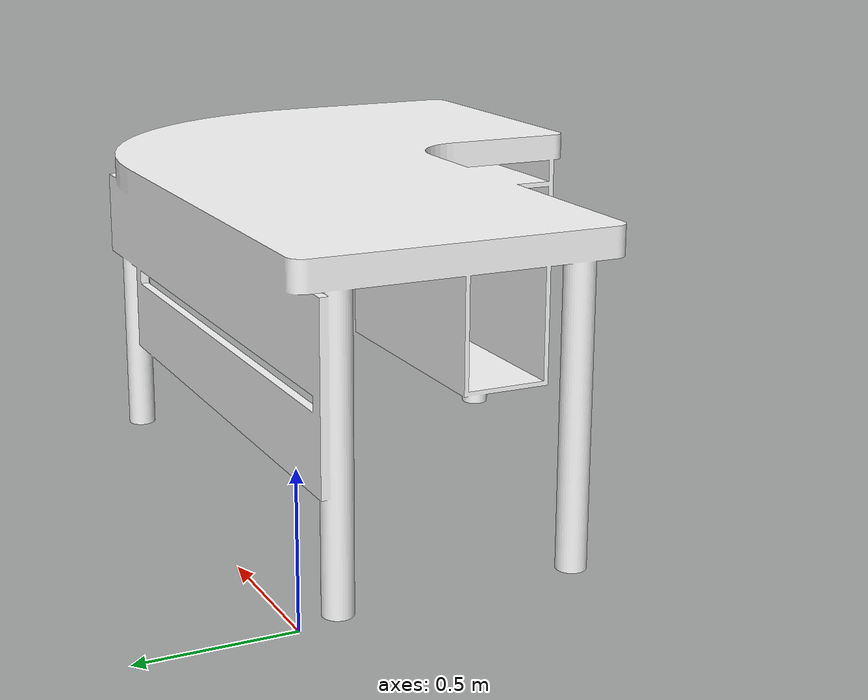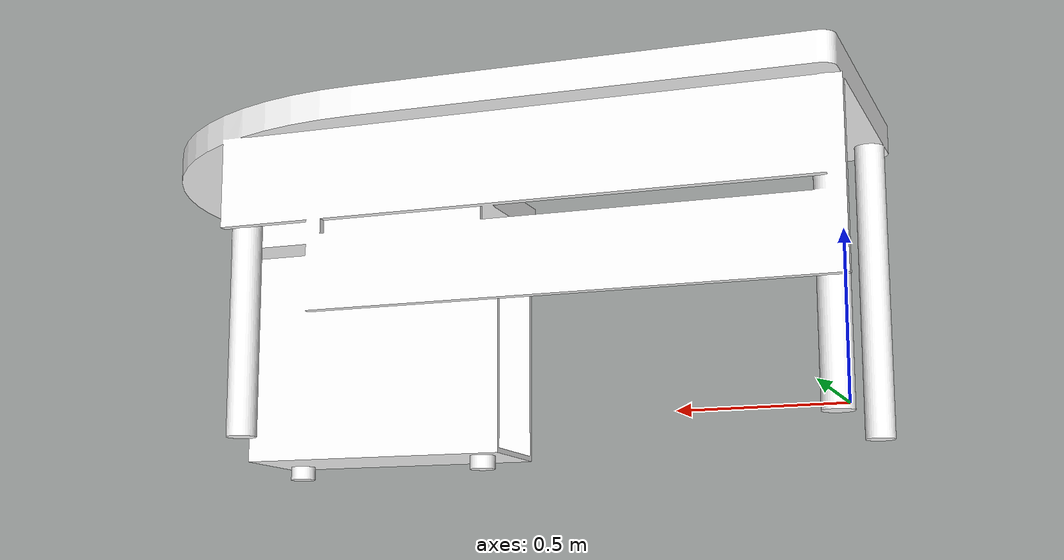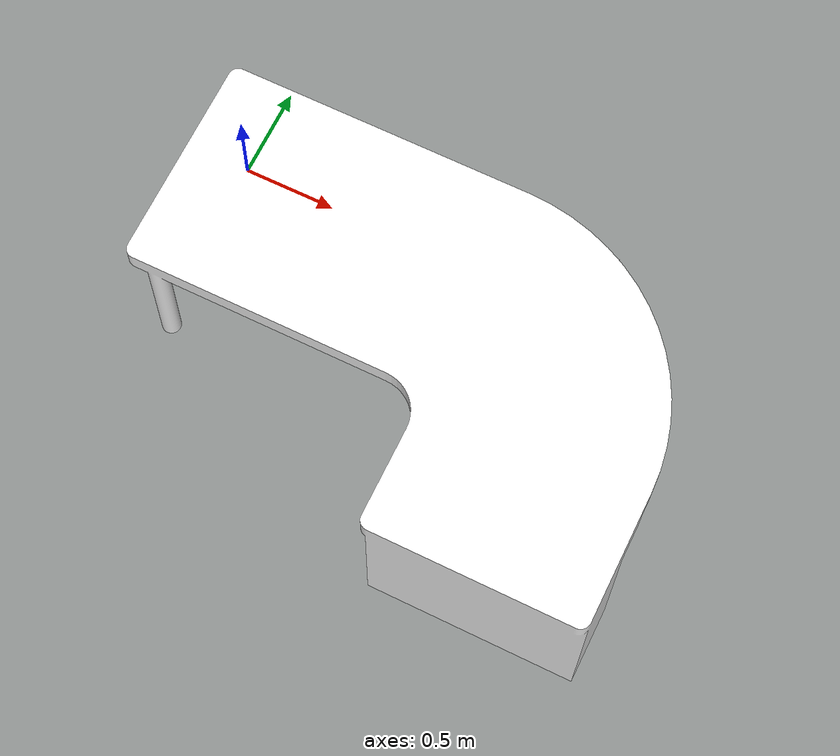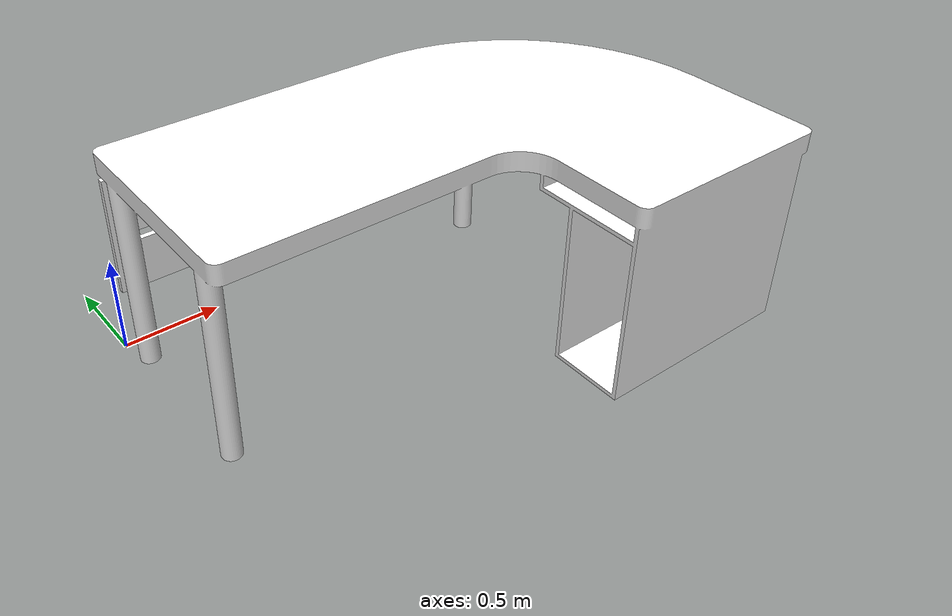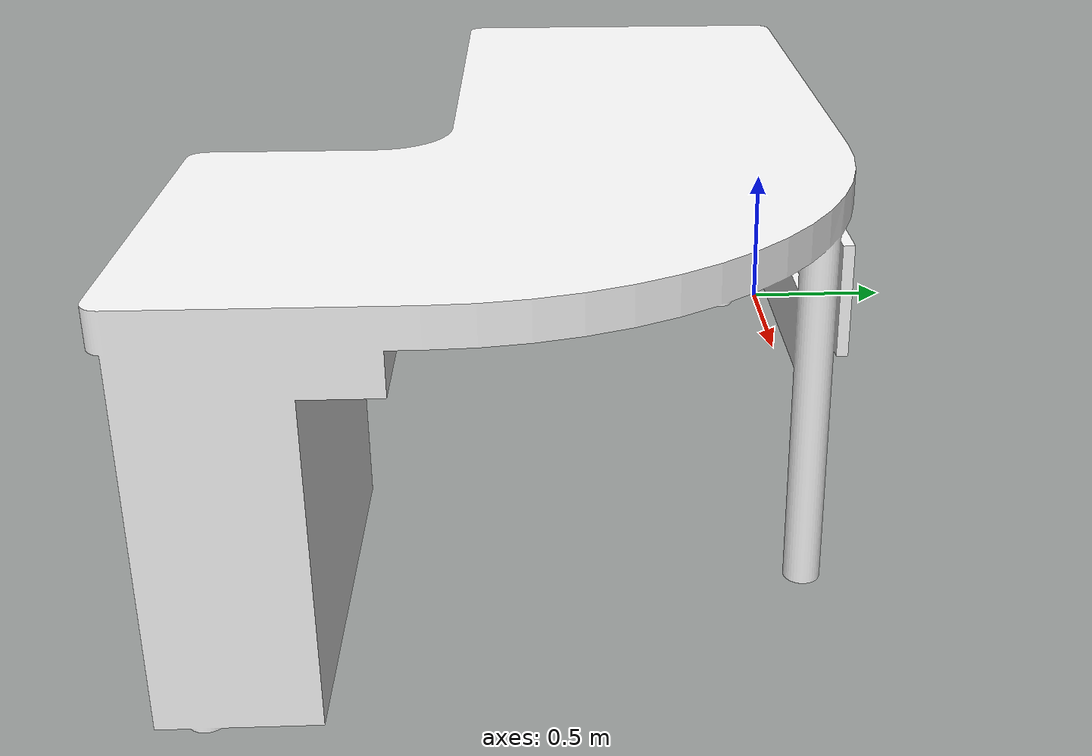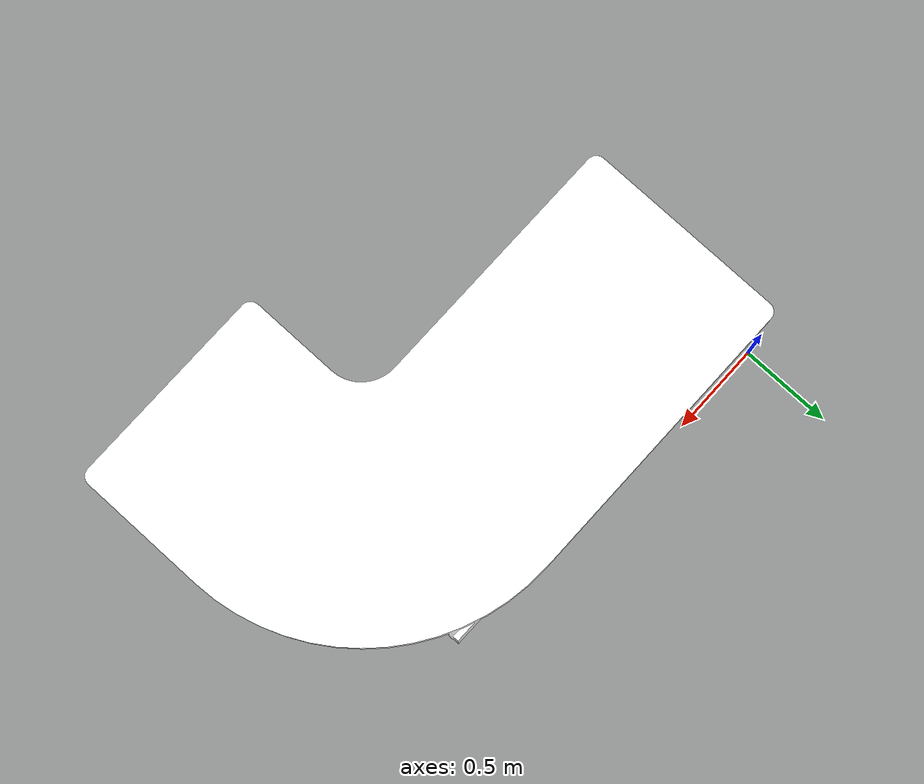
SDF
<?xml version="1.0" ?>
<sdf version="1.6">

  <!-- Model -->
  <model name="desk">
    <pose>0 0 0 0 0 0</pose>
    <static>true</static>

    <!-- Link -->
    <link name="link">
      <visual name="visual">
        <geometry>
          <mesh>
            <scale>1 1 1</scale>
            <uri>model://desk/meshes/desk.dae</uri>
          </mesh>
        </geometry>
        <material>
          <script>
            <uri>model://desk/materials/textures</uri>
            <uri>model://desk/materials/scripts</uri>
            <name>DeskTexture</name>
          </script>
          <ambient>1 1 1 1</ambient>
          <diffuse>1 1 1 1</diffuse>
          <specular>1 1 1 1</specular>
          <emissive>0 0 0 1</emissive>
        </material>
      </visual>

    </link>

  </model>
</sdf>
